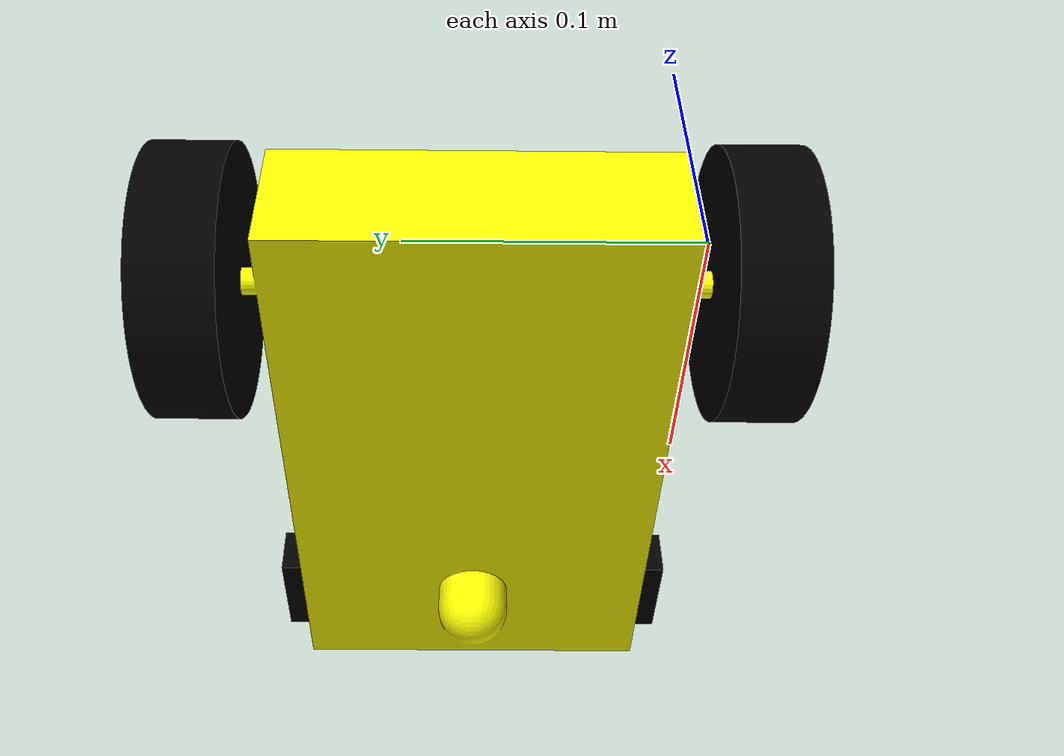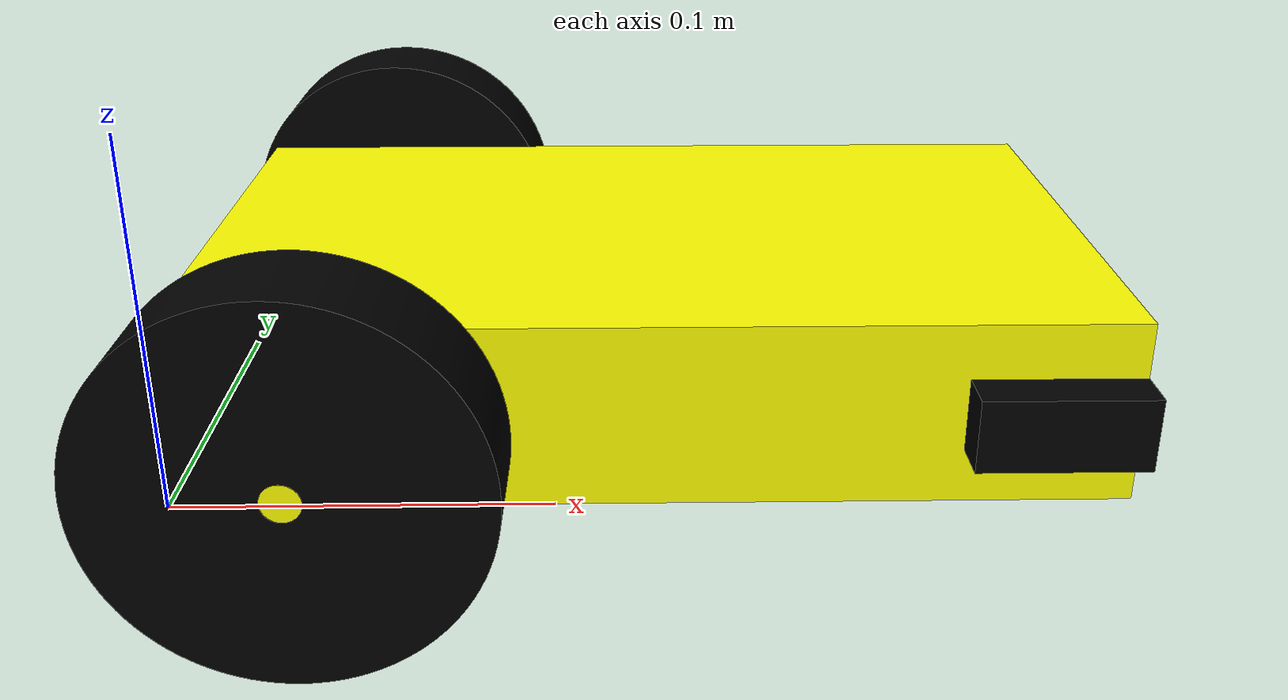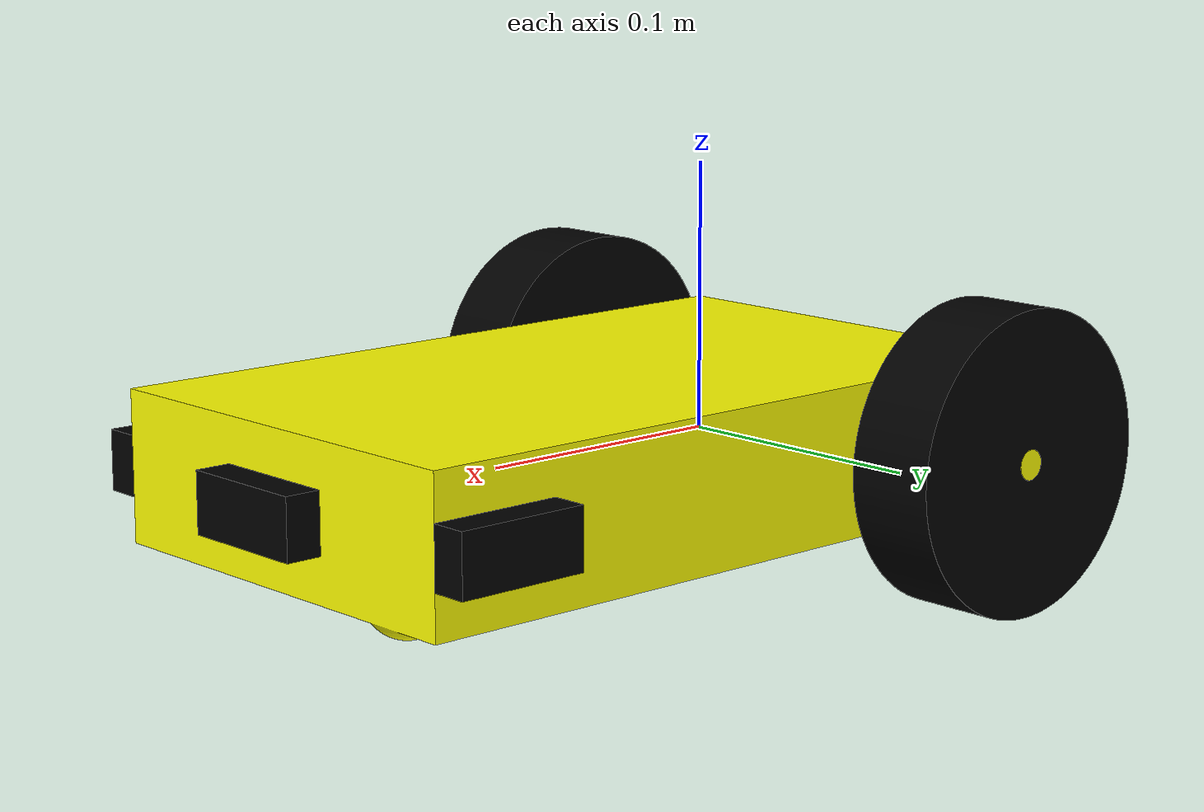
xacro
<?xml version="1.0" ?>
<robot name="rnnbot" xmlns:xacro="http://www.ros.org/wiki/xacro">

<xacro:include filename="$(find rnnbot_description)/urdf/materials.xacro" />
<xacro:include filename="$(find rnnbot_description)/urdf/rnnbot.trans" />
<xacro:include filename="$(find rnnbot_description)/urdf/rnnbot.gazebo" />
<xacro:include filename="$(find rnnbot_description)/urdf/gazebo_control.xacro" />
<link name="base_link">
  <inertial>
    <origin xyz="0.12527762536625361 0.07499999999999997 0.024736618472510664" rpy="0 0 0"/>
    <mass value="2.691496900192634"/>
    <inertia ixx="0.005655" iyy="0.014626" izz="0.01912" ixy="-0.0" iyz="-0.0" ixz="5.3e-05"/>
  </inertial>
  <visual>
    <origin xyz="0 0 0" rpy="0 0 0"/>
    <geometry>
      <mesh filename="file://$(find rnnbot_description)/meshes/base_link.stl" scale="0.001 0.001 0.001"/>
    </geometry>
    <material name="yellow"/>
  </visual>
  <collision>
    <origin xyz="0 0 0" rpy="0 0 0"/>
    <geometry>
      <mesh filename="file://$(find rnnbot_description)/meshes/base_link.stl" scale="0.001 0.001 0.001"/>
    </geometry>
  </collision>
</link>

<link name="lwheel_link_1">
  <inertial>
    <origin xyz="-5.287437154777308e-15 -0.015000000000000013 0.0" rpy="0 0 0"/>
    <mass value="0.21693482671200906"/>
    <inertia ixx="0.000153" iyy="0.000274" izz="0.000153" ixy="0.0" iyz="-0.0" ixz="0.0"/>
  </inertial>
  <visual>
    <origin xyz="-0.04 -0.19 -0.025" rpy="0 0 0"/>
    <geometry>
      <mesh filename="file://$(find rnnbot_description)/meshes/lwheel_link_1.stl" scale="0.001 0.001 0.001"/>
    </geometry>
    <material name="black"/>
  </visual>
  <collision>
    <origin xyz="-0.04 -0.19 -0.025" rpy="0 0 0"/>
    <geometry>
      <mesh filename="file://$(find rnnbot_description)/meshes/lwheel_link_1.stl" scale="0.001 0.001 0.001"/>
    </geometry>
  </collision>
</link>

<link name="rwheel_link_1">
  <inertial>
    <origin xyz="-5.287437154777308e-15 0.015 0.0" rpy="0 0 0"/>
    <mass value="0.21693482671200906"/>
    <inertia ixx="0.000153" iyy="0.000274" izz="0.000153" ixy="-0.0" iyz="-0.0" ixz="0.0"/>
  </inertial>
  <visual>
    <origin xyz="-0.04 0.04 -0.025" rpy="0 0 0"/>
    <geometry>
      <mesh filename="file://$(find rnnbot_description)/meshes/rwheel_link_1.stl" scale="0.001 0.001 0.001"/>
    </geometry>
    <material name="black"/>
  </visual>
  <collision>
    <origin xyz="-0.04 0.04 -0.025" rpy="0 0 0"/>
    <geometry>
      <mesh filename="file://$(find rnnbot_description)/meshes/rwheel_link_1.stl" scale="0.001 0.001 0.001"/>
    </geometry>
  </collision>
</link>

<link name="rultrasonic_link_1">
  <inertial>
    <origin xyz="-0.022500000000000048 -0.006000000000000001 0.0" rpy="0 0 0"/>
    <mass value="0.017560799999999998"/>
    <inertia ixx="1e-06" iyy="4e-06" izz="3e-06" ixy="0.0" iyz="0.0" ixz="0.0"/>
  </inertial>
  <visual>
    <origin xyz="-0.25 -0.0 -0.025" rpy="0 0 0"/>
    <geometry>
      <mesh filename="file://$(find rnnbot_description)/meshes/rultrasonic_link_1.stl" scale="0.001 0.001 0.001"/>
    </geometry>
    <material name="black"/>
  </visual>
  <collision>
    <origin xyz="-0.25 -0.0 -0.025" rpy="0 0 0"/>
    <geometry>
      <mesh filename="file://$(find rnnbot_description)/meshes/rultrasonic_link_1.stl" scale="0.001 0.001 0.001"/>
    </geometry>
  </collision>
</link>

<link name="fultrasonic_link_1">
  <inertial>
    <origin xyz="0.006000000000000005 1.3877787807814457e-17 0.0" rpy="0 0 0"/>
    <mass value="0.017560799999999988"/>
    <inertia ixx="4e-06" iyy="1e-06" izz="3e-06" ixy="0.0" iyz="0.0" ixz="0.0"/>
  </inertial>
  <visual>
    <origin xyz="-0.25 -0.075 -0.025" rpy="0 0 0"/>
    <geometry>
      <mesh filename="file://$(find rnnbot_description)/meshes/fultrasonic_link_1.stl" scale="0.001 0.001 0.001"/>
    </geometry>
    <material name="black"/>
  </visual>
  <collision>
    <origin xyz="-0.25 -0.075 -0.025" rpy="0 0 0"/>
    <geometry>
      <mesh filename="file://$(find rnnbot_description)/meshes/fultrasonic_link_1.stl" scale="0.001 0.001 0.001"/>
    </geometry>
  </collision>
</link>

<link name="lultrasonic_link_1">
  <inertial>
    <origin xyz="-0.022500000000000048 0.006000000000000033 0.0" rpy="0 0 0"/>
    <mass value="0.017560799999999988"/>
    <inertia ixx="1e-06" iyy="4e-06" izz="3e-06" ixy="0.0" iyz="0.0" ixz="0.0"/>
  </inertial>
  <visual>
    <origin xyz="-0.25 -0.15 -0.025" rpy="0 0 0"/>
    <geometry>
      <mesh filename="file://$(find rnnbot_description)/meshes/lultrasonic_link_1.stl" scale="0.001 0.001 0.001"/>
    </geometry>
    <material name="black"/>
  </visual>
  <collision>
    <origin xyz="-0.25 -0.15 -0.025" rpy="0 0 0"/>
    <geometry>
      <mesh filename="file://$(find rnnbot_description)/meshes/lultrasonic_link_1.stl" scale="0.001 0.001 0.001"/>
    </geometry>
  </collision>
</link>

<link name="lultrasonic_ray_frame"/>

    <!-- 2. The Joint that twists the invisible frame -->
<joint name="lultrasonic_ray_joint" type="fixed">
        <parent link="lultrasonic_link_1"/> <!-- Attached to your physical box -->
        <child link="lultrasonic_ray_frame"/>

        <!-- Rotate the invisible frame here! -->
        <!-- Example: Twist 90 degrees to the left (Yaw: 1.57) -->
        <origin xyz="0 0 0" rpy="0 0 1.57"/>
</joint>

<link name="fultrasonic_ray_frame"/>

    <!-- 2. The Joint that twists the invisible frame -->
<joint name="fultrasonic_ray_joint" type="fixed">
        <parent link="fultrasonic_link_1"/> <!-- Attached to your physical box -->
        <child link="fultrasonic_ray_frame"/>

        <!-- Rotate the invisible frame here! -->
        <!-- Example: Twist 90 degrees to the left (Yaw: 1.57) -->
        <origin xyz="0 0 0" rpy="0 0 0"/>
</joint>

<link name="rultrasonic_ray_frame"/>

    <!-- 2. The Joint that twists the invisible frame -->
<joint name="rultrasonic_ray_joint" type="fixed">
        <parent link="rultrasonic_link_1"/> <!-- Attached to your physical box -->
        <child link="rultrasonic_ray_frame"/>

        <!-- Rotate the invisible frame here! -->
        <!-- Example: Twist 90 degrees to the left (Yaw: 1.57) -->
        <origin xyz="0 0 0" rpy="0 0 -1.57"/>
</joint>

<joint name="lw_joint" type="continuous">
  <origin xyz="0.04 0.19 0.025" rpy="0 0 0"/>
  <parent link="base_link"/>
  <child link="lwheel_link_1"/>
  <axis xyz="0.0 1.0 0.0"/>
</joint>

<joint name="rw_joint" type="continuous">
  <origin xyz="0.04 -0.04 0.025" rpy="0 0 0"/>
  <parent link="base_link"/>
  <child link="rwheel_link_1"/>
  <axis xyz="0.0 1.0 0.0"/>
</joint>

<joint name="rultra_joint" type="fixed">
  <origin xyz="0.25 0.0 0.025" rpy="0 0 0"/>
  <parent link="base_link"/>
  <child link="rultrasonic_link_1"/>
</joint>

<joint name="fultra_joint" type="fixed">
  <origin xyz="0.25 0.075 0.025" rpy="0 0 0"/>
  <parent link="base_link"/>
  <child link="fultrasonic_link_1"/>
</joint>

<joint name="lultra_joint" type="fixed">
  <origin xyz="0.25 0.15 0.025" rpy="0 0 0"/>
  <parent link="base_link"/>
  <child link="lultrasonic_link_1"/>
</joint>

</robot>

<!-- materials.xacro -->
<robot name="rnnbot" xmlns:xacro="http://www.ros.org/wiki/xacro" >

<material name="black">
  <color rgba="0.0 0.0 0.0 1.000"/>
</material>

<material name="yellow">
  <color rgba="1.0 1.0 0.0 1.000"/>
</material>

</robot>
